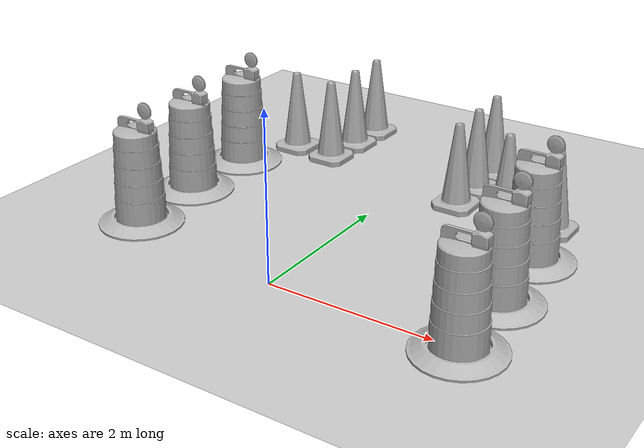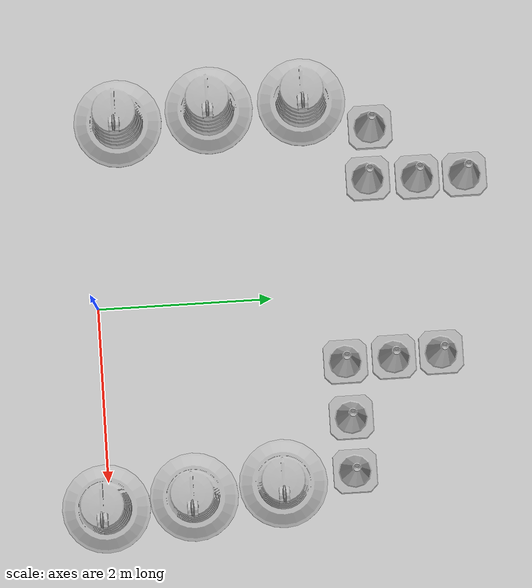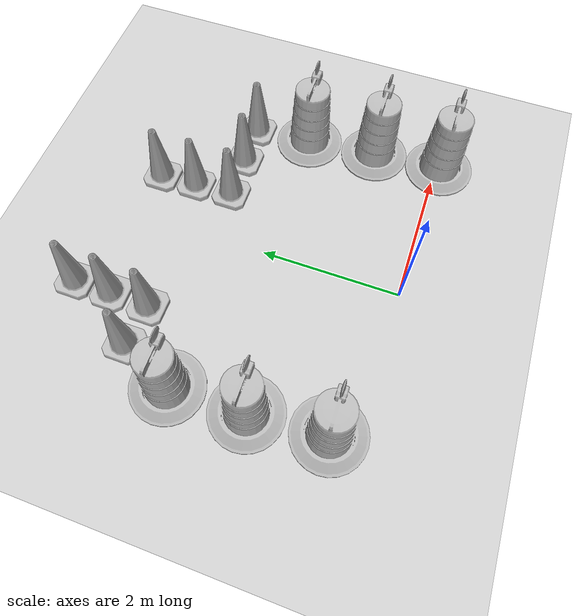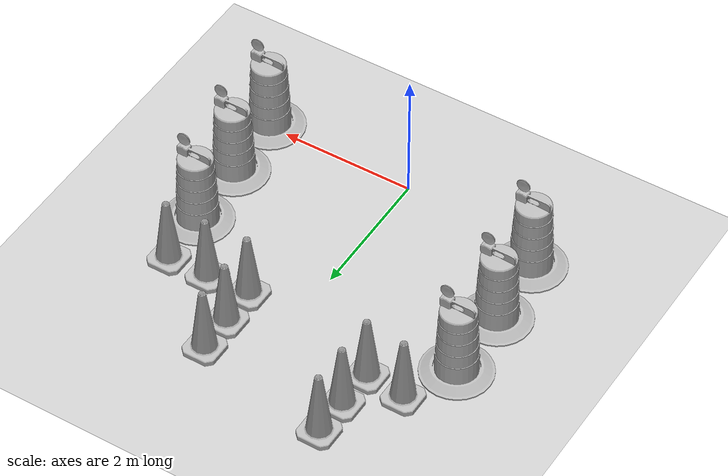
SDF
<sdf version="1.7">
 <world name="default">
  <light name="sun" type="directional">
   <pose>0 0 10 0 -0 0</pose>
   <diffuse>0.8 0.8 0.8 1</diffuse>
   <specular>0.2 0.2 0.2 1</specular>
   <attenuation>
    <range>1000</range>
    <constant>0.9</constant>
    <linear>0.01</linear>
    <quadratic>0.001</quadratic>
   </attenuation>
   <direction>-0.5 0.1 -0.9</direction>
   <spot><inner_angle>0</inner_angle><outer_angle>0</outer_angle><falloff>0</falloff></spot>
  </light>
  <model name="ground_plane">
   <static>1</static>
   <link name="link">
    <collision name="collision">
     <geometry><plane><normal>0 0 1</normal><size>100 100</size></plane></geometry>
     <surface><friction><ode><mu>100</mu><mu2>50</mu2></ode></friction></surface>
    </collision>
    <visual name="visual">
     <cast_shadows>0</cast_shadows>
     <geometry><plane><normal>0 0 1</normal><size>100 100</size></plane></geometry>
     <material>
      <script><uri>file://media/materials/scripts/gazebo.material</uri><name>Gazebo/Grey</name></script>
     </material>
    </visual>
   </link>
  </model>
  <gravity>0 0 -9.8</gravity>
  <magnetic_field>6e-06 2.3e-05 -4.2e-05</magnetic_field>
  <atmosphere type="adiabatic"/>
  <physics type="ode">
   <max_step_size>0.001</max_step_size>
   <real_time_factor>1</real_time_factor>
   <real_time_update_rate>1000</real_time_update_rate>
  </physics>
  <scene><ambient>0.4 0.4 0.4 1</ambient><background>0.7 0.7 0.7 1</background><shadows>1</shadows></scene>
  <audio><device>default</device></audio>
  <spherical_coordinates>
   <surface_model>EARTH_WGS84</surface_model>
   <latitude_deg>0</latitude_deg>
   <longitude_deg>0</longitude_deg>
   <elevation>0</elevation>
   <heading_deg>0</heading_deg>
  </spherical_coordinates>
  <model name="Construction Barrel">
   <link name="link">
    <inertial>
     <pose>0 0 0.4 0 -0 0</pose>
     <mass>500</mass>
     <inertia><ixx>51.2096</ixx><iyy>51.2096</iyy><izz>25</izz><ixy>0</ixy><ixz>0</ixz><iyz>0</iyz></inertia>
    </inertial>
    <collision name="collision">
     <geometry><mesh><uri>model://construction_barrel/meshes/construction_barrel.dae</uri></mesh></geometry>
    </collision>
    <visual name="visual">
     <geometry><mesh><uri>model://construction_barrel/meshes/construction_barrel.dae</uri></mesh></geometry>
    </visual>
   </link>
   <pose>-2.1417 0.349315 1e-06 3e-06 2e-06 -2.3e-05</pose>
  </model>
  <model name="Construction Barrel_0">
   <link name="link">
    <inertial>
     <pose>0 0 0.4 0 -0 0</pose>
     <mass>500</mass>
     <inertia><ixx>51.2096</ixx><iyy>51.2096</iyy><izz>25</izz><ixy>0</ixy><ixz>0</ixz><iyz>0</iyz></inertia>
    </inertial>
    <collision name="collision">
     <geometry><mesh><uri>model://construction_barrel/meshes/construction_barrel.dae</uri></mesh></geometry>
    </collision>
    <visual name="visual">
     <geometry><mesh><uri>model://construction_barrel/meshes/construction_barrel.dae</uri></mesh></geometry>
    </visual>
   </link>
   <pose>2.2977 -0.041652 1e-06 3e-06 2e-06 -2.2e-05</pose>
  </model>
  <model name="Construction Barrel_1">
   <link name="link">
    <inertial>
     <pose>0 0 0.4 0 -0 0</pose>
     <mass>500</mass>
     <inertia><ixx>51.2096</ixx><iyy>51.2096</iyy><izz>25</izz><ixy>0</ixy><ixz>0</ixz><iyz>0</iyz></inertia>
    </inertial>
    <collision name="collision">
     <geometry><mesh><uri>model://construction_barrel/meshes/construction_barrel.dae</uri></mesh></geometry>
    </collision>
    <visual name="visual">
     <geometry><mesh><uri>model://construction_barrel/meshes/construction_barrel.dae</uri></mesh></geometry>
    </visual>
   </link>
   <pose>-2.23069 1.41165 1e-06 3e-06 2e-06 -2.1e-05</pose>
  </model>
  <model name="Construction Barrel_2">
   <link name="link">
    <inertial>
     <pose>0 0 0.4 0 -0 0</pose>
     <mass>500</mass>
     <inertia><ixx>51.2096</ixx><iyy>51.2096</iyy><izz>25</izz><ixy>0</ixy><ixz>0</ixz><iyz>0</iyz></inertia>
    </inertial>
    <collision name="collision">
     <geometry><mesh><uri>model://construction_barrel/meshes/construction_barrel.dae</uri></mesh></geometry>
    </collision>
    <visual name="visual">
     <geometry><mesh><uri>model://construction_barrel/meshes/construction_barrel.dae</uri></mesh></geometry>
    </visual>
   </link>
   <pose>2.22569 0.973098 1e-06 3e-06 2e-06 -2e-05</pose>
  </model>
  <model name="Construction Barrel_3">
   <link name="link">
    <inertial>
     <pose>0 0 0.4 0 -0 0</pose>
     <mass>500</mass>
     <inertia><ixx>51.2096</ixx><iyy>51.2096</iyy><izz>25</izz><ixy>0</ixy><ixz>0</ixz><iyz>0</iyz></inertia>
    </inertial>
    <collision name="collision">
     <geometry><mesh><uri>model://construction_barrel/meshes/construction_barrel.dae</uri></mesh></geometry>
    </collision>
    <visual name="visual">
     <geometry><mesh><uri>model://construction_barrel/meshes/construction_barrel.dae</uri></mesh></geometry>
    </visual>
   </link>
   <pose>-2.25947 2.48653 -0 0 0 -1.8e-05</pose>
  </model>
  <model name="Construction Barrel_4">
   <link name="link">
    <inertial>
     <pose>0 0 0.4 0 -0 0</pose>
     <mass>500</mass>
     <inertia><ixx>51.2096</ixx><iyy>51.2096</iyy><izz>25</izz><ixy>0</ixy><ixz>0</ixz><iyz>0</iyz></inertia>
    </inertial>
    <collision name="collision">
     <geometry><mesh><uri>model://construction_barrel/meshes/construction_barrel.dae</uri></mesh></geometry>
    </collision>
    <visual name="visual">
     <geometry><mesh><uri>model://construction_barrel/meshes/construction_barrel.dae</uri></mesh></geometry>
    </visual>
   </link>
   <pose>2.1337 2.00452 -2e-06 8e-06 -4e-06 -1.7e-05</pose>
  </model>
  <model name="Construction Cone">
   <link name="link">
    <collision name="collision">
     <geometry>
      <mesh><scale>10 10 10</scale><uri>model://construction_cone/meshes/construction_cone.dae</uri></mesh>
     </geometry>
    </collision>
    <visual name="visual">
     <geometry>
      <mesh><scale>10 10 10</scale><uri>model://construction_cone/meshes/construction_cone.dae</uri></mesh>
     </geometry>
    </visual>
    <inertial>
     <inertia><ixx>1</ixx><ixy>0</ixy><ixz>0</ixz><iyy>1</iyy><iyz>0</iyz><izz>1</izz></inertia>
     <mass>1</mass>
    </inertial>
   </link>
   <pose>-1.91498 3.26171 -0 0 -0 0</pose>
  </model>
  <model name="Construction Cone_0">
   <link name="link">
    <collision name="collision">
     <geometry>
      <mesh><scale>10 10 10</scale><uri>model://construction_cone/meshes/construction_cone.dae</uri></mesh>
     </geometry>
    </collision>
    <visual name="visual">
     <geometry>
      <mesh><scale>10 10 10</scale><uri>model://construction_cone/meshes/construction_cone.dae</uri></mesh>
     </geometry>
    </visual>
    <inertial>
     <inertia><ixx>1</ixx><ixy>0</ixy><ixz>0</ixz><iyy>1</iyy><iyz>0</iyz><izz>1</izz></inertia>
     <mass>1</mass>
    </inertial>
   </link>
   <pose>2.04582 2.83633 -1e-06 4e-06 -0 0</pose>
  </model>
  <model name="Construction Cone_1">
   <link name="link">
    <collision name="collision">
     <geometry>
      <mesh><scale>10 10 10</scale><uri>model://construction_cone/meshes/construction_cone.dae</uri></mesh>
     </geometry>
    </collision>
    <visual name="visual">
     <geometry>
      <mesh><scale>10 10 10</scale><uri>model://construction_cone/meshes/construction_cone.dae</uri></mesh>
     </geometry>
    </visual>
    <inertial>
     <inertia><ixx>1</ixx><ixy>0</ixy><ixz>0</ixz><iyy>1</iyy><iyz>0</iyz><izz>1</izz></inertia>
     <mass>1</mass>
    </inertial>
   </link>
   <pose>1.4266 2.8323 -0 0 -0 0</pose>
  </model>
  <model name="Construction Cone_2">
   <link name="link">
    <collision name="collision">
     <geometry>
      <mesh><scale>10 10 10</scale><uri>model://construction_cone/meshes/construction_cone.dae</uri></mesh>
     </geometry>
    </collision>
    <visual name="visual">
     <geometry>
      <mesh><scale>10 10 10</scale><uri>model://construction_cone/meshes/construction_cone.dae</uri></mesh>
     </geometry>
    </visual>
    <inertial>
     <inertia><ixx>1</ixx><ixy>0</ixy><ixz>0</ixz><iyy>1</iyy><iyz>0</iyz><izz>1</izz></inertia>
     <mass>1</mass>
    </inertial>
   </link>
   <pose>0.78164 2.80517 -9e-06 -1e-06 -0 -0</pose>
  </model>
  <model name="Construction Cone_3">
   <link name="link">
    <collision name="collision">
     <geometry>
      <mesh><scale>10 10 10</scale><uri>model://construction_cone/meshes/construction_cone.dae</uri></mesh>
     </geometry>
    </collision>
    <visual name="visual">
     <geometry>
      <mesh><scale>10 10 10</scale><uri>model://construction_cone/meshes/construction_cone.dae</uri></mesh>
     </geometry>
    </visual>
    <inertial>
     <inertia><ixx>1</ixx><ixy>0</ixy><ixz>0</ixz><iyy>1</iyy><iyz>0</iyz><izz>1</izz></inertia>
     <mass>1</mass>
    </inertial>
   </link>
   <pose>-1.32034 3.19862 -0 0 -0 0</pose>
  </model>
  <model name="Construction Cone_4">
   <link name="link">
    <collision name="collision">
     <geometry>
      <mesh><scale>10 10 10</scale><uri>model://construction_cone/meshes/construction_cone.dae</uri></mesh>
     </geometry>
    </collision>
    <visual name="visual">
     <geometry>
      <mesh><scale>10 10 10</scale><uri>model://construction_cone/meshes/construction_cone.dae</uri></mesh>
     </geometry>
    </visual>
    <inertial>
     <inertia><ixx>1</ixx><ixy>0</ixy><ixz>0</ixz><iyy>1</iyy><iyz>0</iyz><izz>1</izz></inertia>
     <mass>1</mass>
    </inertial>
   </link>
   <pose>-1.30301 3.76876 -0 0 -0 0</pose>
  </model>
  <model name="Construction Cone_5">
   <link name="link">
    <collision name="collision">
     <geometry>
      <mesh><scale>10 10 10</scale><uri>model://construction_cone/meshes/construction_cone.dae</uri></mesh>
     </geometry>
    </collision>
    <visual name="visual">
     <geometry>
      <mesh><scale>10 10 10</scale><uri>model://construction_cone/meshes/construction_cone.dae</uri></mesh>
     </geometry>
    </visual>
    <inertial>
     <inertia><ixx>1</ixx><ixy>0</ixy><ixz>0</ixz><iyy>1</iyy><iyz>0</iyz><izz>1</izz></inertia>
     <mass>1</mass>
    </inertial>
   </link>
   <pose>0.760876 3.36543 0 -0 -0 -0</pose>
  </model>
  <model name="Construction Cone_6">
   <link name="link">
    <collision name="collision">
     <geometry>
      <mesh><scale>10 10 10</scale><uri>model://construction_cone/meshes/construction_cone.dae</uri></mesh>
     </geometry>
    </collision>
    <visual name="visual">
     <geometry>
      <mesh><scale>10 10 10</scale><uri>model://construction_cone/meshes/construction_cone.dae</uri></mesh>
     </geometry>
    </visual>
    <inertial>
     <inertia><ixx>1</ixx><ixy>0</ixy><ixz>0</ixz><iyy>1</iyy><iyz>0</iyz><izz>1</izz></inertia>
     <mass>1</mass>
    </inertial>
   </link>
   <pose>0.740783 3.91244 -0 0 -0 0</pose>
  </model>
  <model name="Construction Cone_7">
   <link name="link">
    <collision name="collision">
     <geometry>
      <mesh><scale>10 10 10</scale><uri>model://construction_cone/meshes/construction_cone.dae</uri></mesh>
     </geometry>
    </collision>
    <visual name="visual">
     <geometry>
      <mesh><scale>10 10 10</scale><uri>model://construction_cone/meshes/construction_cone.dae</uri></mesh>
     </geometry>
    </visual>
    <inertial>
     <inertia><ixx>1</ixx><ixy>0</ixy><ixz>0</ixz><iyy>1</iyy><iyz>0</iyz><izz>1</izz></inertia>
     <mass>1</mass>
    </inertial>
   </link>
   <pose>-1.2995 4.31757 -0 0 -1e-06 0</pose>
  </model>
 </world>
</sdf>
